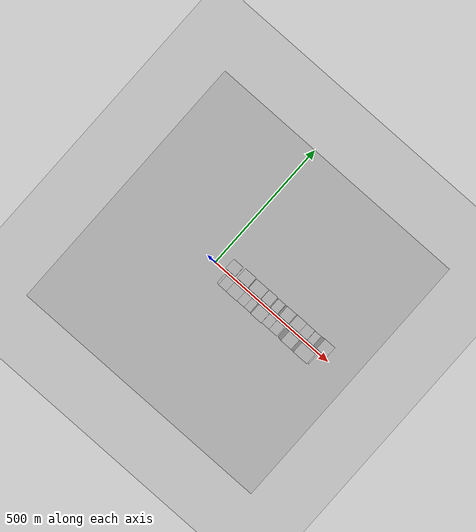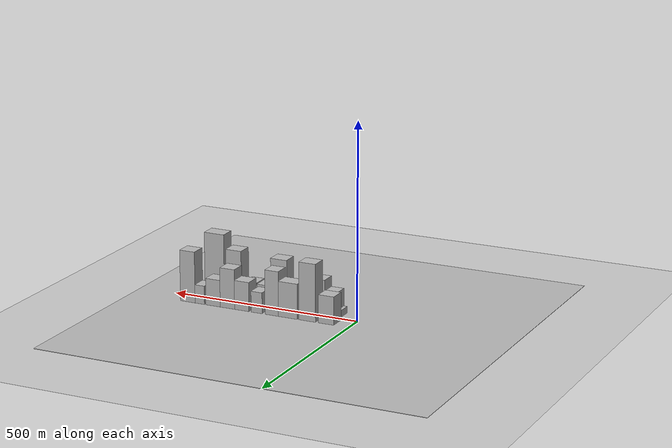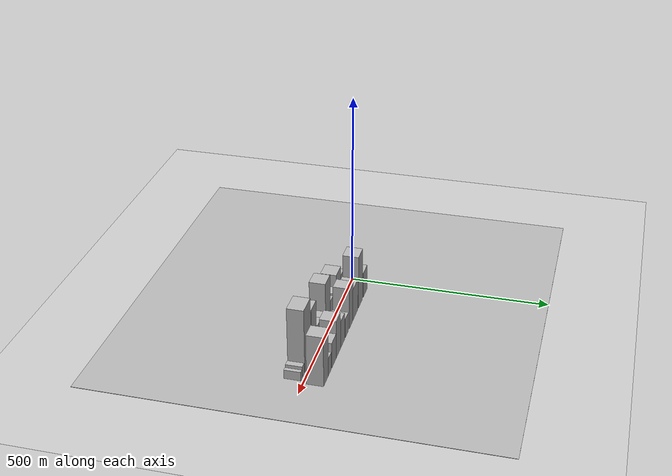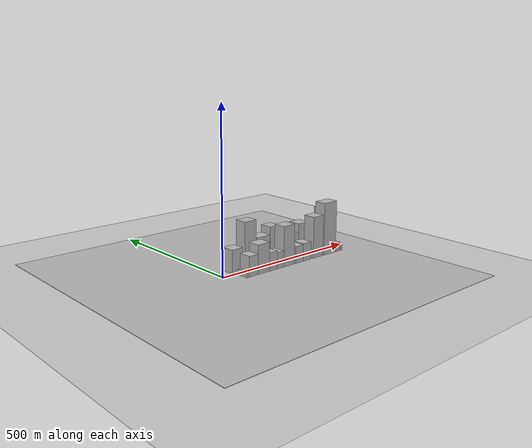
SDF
<?xml version="1.0" encoding="utf-8"?>

<sdf version="1.6">

   <world name="default">

      <gui fullscreen="0">

         <camera name="user_camera">

            <pose>-15 0 4.57585 0 0 0</pose>

            <view_controller>orbit</view_controller>

         </camera>

      </gui>

      <scene>

         <sky>

           <clouds>

             <speed>12</speed>

           </clouds>

         </sky>

         <ambient>0.4 0.4 0.4 1</ambient>

         <background>0.7 0.7 0.7 1</background>

         <shadows>1</shadows>

      </scene>

      <gravity>0 0 -9.8066</gravity>

      <magnetic_field>6e-06 2.3e-05 -4.2e-05</magnetic_field>

      <physics default="0" name="default_physics" type="ode">

         <ode>

            <solver>

               <type>quick</type>

               <iters>10</iters>

               <sor>1.0</sor>

               <use_dynamic_moi_rescaling>0</use_dynamic_moi_rescaling>

            </solver>

            <constraints>

               <cfm>0</cfm>

               <erp>0.2</erp>

               <contact_max_correcting_vel>100</contact_max_correcting_vel>

               <contact_surface_layer>0.001</contact_surface_layer>

            </constraints>

         </ode>

         <max_step_size>0.004</max_step_size>

         <real_time_factor>1</real_time_factor>

         <real_time_update_rate>250</real_time_update_rate>

      </physics>

      <light name="sun" type="directional">

         <cast_shadows>1</cast_shadows>

         <pose>0 0 10 0 0 0</pose>

         <diffuse>0.8 0.8 0.8 1</diffuse>

         <specular>0.2 0.2 0.2 1</specular>

         <attenuation>

            <range>1000</range>

            <constant>0.9</constant>

            <linear>0.01</linear>

            <quadratic>0.001</quadratic>

         </attenuation>

         <direction>-0.5 0.1 -0.9</direction>

      </light>

      <include>

         <name>ground_plane_1</name>

         <uri>model://HANNAS_ground_plane</uri>

         <pose>0 0 0  0 0 0</pose>

      </include>

      <include>

         <name>ground_plane_2</name>

         <uri>model://HANNAS_ground_plane</uri>

         <pose>100 0 0  0 0 0</pose>

      </include>

      <model name="building_1">

         <static>1</static>

         <pose frame="">60.5274 27.5000 0 0.000000 0.000000 1.570796</pose>

         <link name="link">

            <pose frame="">0 0 36.00 0 0 0</pose>

            <collision name="collision">

               <geometry>

                  <box>

                     <size>40.0000 41.0547 72.0000</size>

                  </box>

               </geometry>

               <max_contacts>10</max_contacts>

               <surface>

                  <contact>

                     <ode/>

                  </contact>

                  <bounce/>

                  <friction>

                     <torsional>

                        <ode/>

                     </torsional>

                     <ode/>

                  </friction>

               </surface>

            </collision>

            <visual name="visual">

               <cast_shadows>0</cast_shadows>

               <geometry>

                  <box>

                     <size>40.0000 41.0547 72.0000</size>

                  </box>

               </geometry>

               <material>

                  <script>

                     <uri>model://HANNAS_wall/materials/scripts</uri>

                     <uri>model://HANNAS_wall/materials/textures</uri>

                     <name>vrc/HANNAS_wall</name>

                  </script>

               </material>

            </visual>

            <self_collide>0</self_collide>

            <enable_wind>0</enable_wind>

            <kinematic>0</kinematic>

         </link>

      </model>

      <model name="building_2">

         <static>1</static>

         <pose frame="">111.3470 27.5000 0 0.000000 0.000000 1.570796</pose>

         <link name="link">

            <pose frame="">0 0 73.50 0 0 0</pose>

            <collision name="collision">

               <geometry>

                  <box>

                     <size>40.0000 44.5845 147.0000</size>

                  </box>

               </geometry>

               <max_contacts>10</max_contacts>

               <surface>

                  <contact>

                     <ode/>

                  </contact>

                  <bounce/>

                  <friction>

                     <torsional>

                        <ode/>

                     </torsional>

                     <ode/>

                  </friction>

               </surface>

            </collision>

            <visual name="visual">

               <cast_shadows>0</cast_shadows>

               <geometry>

                  <box>

                     <size>40.0000 44.5845 147.0000</size>

                  </box>

               </geometry>

               <material>

                  <script>

                     <uri>model://HANNAS_wall/materials/scripts</uri>

                     <uri>model://HANNAS_wall/materials/textures</uri>

                     <name>vrc/HANNAS_wall</name>

                  </script>

               </material>

            </visual>

            <self_collide>0</self_collide>

            <enable_wind>0</enable_wind>

            <kinematic>0</kinematic>

         </link>

      </model>

      <model name="building_3">

         <static>1</static>

         <pose frame="">163.5459 27.5000 0 0.000000 0.000000 1.570796</pose>

         <link name="link">

            <pose frame="">0 0 45.00 0 0 0</pose>

            <collision name="collision">

               <geometry>

                  <box>

                     <size>40.0000 51.8133 90.0000</size>

                  </box>

               </geometry>

               <max_contacts>10</max_contacts>

               <surface>

                  <contact>

                     <ode/>

                  </contact>

                  <bounce/>

                  <friction>

                     <torsional>

                        <ode/>

                     </torsional>

                     <ode/>

                  </friction>

               </surface>

            </collision>

            <visual name="visual">

               <cast_shadows>0</cast_shadows>

               <geometry>

                  <box>

                     <size>40.0000 51.8133 90.0000</size>

                  </box>

               </geometry>

               <material>

                  <script>

                     <uri>model://HANNAS_wall/materials/scripts</uri>

                     <uri>model://HANNAS_wall/materials/textures</uri>

                     <name>vrc/HANNAS_wall</name>

                  </script>

               </material>

            </visual>

            <self_collide>0</self_collide>

            <enable_wind>0</enable_wind>

            <kinematic>0</kinematic>

         </link>

      </model>

      <model name="building_4">

         <static>1</static>

         <pose frame="">207.6033 27.5000 0 0.000000 0.000000 1.570796</pose>

         <link name="link">

            <pose frame="">0 0 57.00 0 0 0</pose>

            <collision name="collision">

               <geometry>

                  <box>

                     <size>40.0000 36.3016 114.0000</size>

                  </box>

               </geometry>

               <max_contacts>10</max_contacts>

               <surface>

                  <contact>

                     <ode/>

                  </contact>

                  <bounce/>

                  <friction>

                     <torsional>

                        <ode/>

                     </torsional>

                     <ode/>

                  </friction>

               </surface>

            </collision>

            <visual name="visual">

               <cast_shadows>0</cast_shadows>

               <geometry>

                  <box>

                     <size>40.0000 36.3016 114.0000</size>

                  </box>

               </geometry>

               <material>

                  <script>

                     <uri>model://HANNAS_wall/materials/scripts</uri>

                     <uri>model://HANNAS_wall/materials/textures</uri>

                     <name>vrc/HANNAS_wall</name>

                  </script>

               </material>

            </visual>

            <self_collide>0</self_collide>

            <enable_wind>0</enable_wind>

            <kinematic>0</kinematic>

         </link>

      </model>

      <model name="building_5">

         <static>1</static>

         <pose frame="">248.8121 27.5000 0 0.000000 0.000000 1.570796</pose>

         <link name="link">

            <pose frame="">0 0 27.00 0 0 0</pose>

            <collision name="collision">

               <geometry>

                  <box>

                     <size>40.0000 30.1159 54.0000</size>

                  </box>

               </geometry>

               <max_contacts>10</max_contacts>

               <surface>

                  <contact>

                     <ode/>

                  </contact>

                  <bounce/>

                  <friction>

                     <torsional>

                        <ode/>

                     </torsional>

                     <ode/>

                  </friction>

               </surface>

            </collision>

            <visual name="visual">

               <cast_shadows>0</cast_shadows>

               <geometry>

                  <box>

                     <size>40.0000 30.1159 54.0000</size>

                  </box>

               </geometry>

               <material>

                  <script>

                     <uri>model://HANNAS_wall/materials/scripts</uri>

                     <uri>model://HANNAS_wall/materials/textures</uri>

                     <name>vrc/HANNAS_wall</name>

                  </script>

               </material>

            </visual>

            <self_collide>0</self_collide>

            <enable_wind>0</enable_wind>

            <kinematic>0</kinematic>

         </link>

      </model>

      <model name="building_6">

         <static>1</static>

         <pose frame="">289.7577 27.5000 0 0.000000 0.000000 1.570796</pose>

         <link name="link">

            <pose frame="">0 0 37.50 0 0 0</pose>

            <collision name="collision">

               <geometry>

                  <box>

                     <size>40.0000 39.7754 75.0000</size>

                  </box>

               </geometry>

               <max_contacts>10</max_contacts>

               <surface>

                  <contact>

                     <ode/>

                  </contact>

                  <bounce/>

                  <friction>

                     <torsional>

                        <ode/>

                     </torsional>

                     <ode/>

                  </friction>

               </surface>

            </collision>

            <visual name="visual">

               <cast_shadows>0</cast_shadows>

               <geometry>

                  <box>

                     <size>40.0000 39.7754 75.0000</size>

                  </box>

               </geometry>

               <material>

                  <script>

                     <uri>model://HANNAS_wall/materials/scripts</uri>

                     <uri>model://HANNAS_wall/materials/textures</uri>

                     <name>vrc/HANNAS_wall</name>

                  </script>

               </material>

            </visual>

            <self_collide>0</self_collide>

            <enable_wind>0</enable_wind>

            <kinematic>0</kinematic>

         </link>

      </model>

      <model name="building_7">

         <static>1</static>

         <pose frame="">329.6346 27.5000 0 0.000000 0.000000 1.570796</pose>

         <link name="link">

            <pose frame="">0 0 51.00 0 0 0</pose>

            <collision name="collision">

               <geometry>

                  <box>

                     <size>40.0000 39.9784 102.0000</size>

                  </box>

               </geometry>

               <max_contacts>10</max_contacts>

               <surface>

                  <contact>

                     <ode/>

                  </contact>

                  <bounce/>

                  <friction>

                     <torsional>

                        <ode/>

                     </torsional>

                     <ode/>

                  </friction>

               </surface>

            </collision>

            <visual name="visual">

               <cast_shadows>0</cast_shadows>

               <geometry>

                  <box>

                     <size>40.0000 39.9784 102.0000</size>

                  </box>

               </geometry>

               <material>

                  <script>

                     <uri>model://HANNAS_wall/materials/scripts</uri>

                     <uri>model://HANNAS_wall/materials/textures</uri>

                     <name>vrc/HANNAS_wall</name>

                  </script>

               </material>

            </visual>

            <self_collide>0</self_collide>

            <enable_wind>0</enable_wind>

            <kinematic>0</kinematic>

         </link>

      </model>

      <model name="building_8">

         <static>1</static>

         <pose frame="">369.5319 27.5000 0 0.000000 0.000000 1.570796</pose>

         <link name="link">

            <pose frame="">0 0 34.50 0 0 0</pose>

            <collision name="collision">

               <geometry>

                  <box>

                     <size>40.0000 39.8163 69.0000</size>

                  </box>

               </geometry>

               <max_contacts>10</max_contacts>

               <surface>

                  <contact>

                     <ode/>

                  </contact>

                  <bounce/>

                  <friction>

                     <torsional>

                        <ode/>

                     </torsional>

                     <ode/>

                  </friction>

               </surface>

            </collision>

            <visual name="visual">

               <cast_shadows>0</cast_shadows>

               <geometry>

                  <box>

                     <size>40.0000 39.8163 69.0000</size>

                  </box>

               </geometry>

               <material>

                  <script>

                     <uri>model://HANNAS_wall/materials/scripts</uri>

                     <uri>model://HANNAS_wall/materials/textures</uri>

                     <name>vrc/HANNAS_wall</name>

                  </script>

               </material>

            </visual>

            <self_collide>0</self_collide>

            <enable_wind>0</enable_wind>

            <kinematic>0</kinematic>

         </link>

      </model>

      <model name="building_9">

         <static>1</static>

         <pose frame="">406.6243 27.5000 0 0.000000 0.000000 1.570796</pose>

         <link name="link">

            <pose frame="">0 0 24.00 0 0 0</pose>

            <collision name="collision">

               <geometry>

                  <box>

                     <size>40.0000 26.3684 48.0000</size>

                  </box>

               </geometry>

               <max_contacts>10</max_contacts>

               <surface>

                  <contact>

                     <ode/>

                  </contact>

                  <bounce/>

                  <friction>

                     <torsional>

                        <ode/>

                     </torsional>

                     <ode/>

                  </friction>

               </surface>

            </collision>

            <visual name="visual">

               <cast_shadows>0</cast_shadows>

               <geometry>

                  <box>

                     <size>40.0000 26.3684 48.0000</size>

                  </box>

               </geometry>

               <material>

                  <script>

                     <uri>model://HANNAS_wall/materials/scripts</uri>

                     <uri>model://HANNAS_wall/materials/textures</uri>

                     <name>vrc/HANNAS_wall</name>

                  </script>

               </material>

            </visual>

            <self_collide>0</self_collide>

            <enable_wind>0</enable_wind>

            <kinematic>0</kinematic>

         </link>

      </model>

      <model name="building_10">

         <static>1</static>

         <pose frame="">440.4687 27.5000 0 0.000000 0.000000 1.570796</pose>

         <link name="link">

            <pose frame="">0 0 66.00 0 0 0</pose>

            <collision name="collision">

               <geometry>

                  <box>

                     <size>40.0000 41.3204 132.0000</size>

                  </box>

               </geometry>

               <max_contacts>10</max_contacts>

               <surface>

                  <contact>

                     <ode/>

                  </contact>

                  <bounce/>

                  <friction>

                     <torsional>

                        <ode/>

                     </torsional>

                     <ode/>

                  </friction>

               </surface>

            </collision>

            <visual name="visual">

               <cast_shadows>0</cast_shadows>

               <geometry>

                  <box>

                     <size>40.0000 41.3204 132.0000</size>

                  </box>

               </geometry>

               <material>

                  <script>

                     <uri>model://HANNAS_wall/materials/scripts</uri>

                     <uri>model://HANNAS_wall/materials/textures</uri>

                     <name>vrc/HANNAS_wall</name>

                  </script>

               </material>

            </visual>

            <self_collide>0</self_collide>

            <enable_wind>0</enable_wind>

            <kinematic>0</kinematic>

         </link>

      </model>

      <model name="building_11">

         <static>1</static>

         <pose frame="">53.3683 -27.5000 0 0.000000 0.000000 1.570796</pose>

         <link name="link">

            <pose frame="">0 0 9.00 0 0 0</pose>

            <collision name="collision">

               <geometry>

                  <box>

                     <size>40.0000 8.7366 18.0000</size>

                  </box>

               </geometry>

               <max_contacts>10</max_contacts>

               <surface>

                  <contact>

                     <ode/>

                  </contact>

                  <bounce/>

                  <friction>

                     <torsional>

                        <ode/>

                     </torsional>

                     <ode/>

                  </friction>

               </surface>

            </collision>

            <visual name="visual">

               <cast_shadows>0</cast_shadows>

               <geometry>

                  <box>

                     <size>40.0000 8.7366 18.0000</size>

                  </box>

               </geometry>

               <material>

                  <script>

                     <uri>model://HANNAS_wall/materials/scripts</uri>

                     <uri>model://HANNAS_wall/materials/textures</uri>

                     <name>vrc/HANNAS_wall</name>

                  </script>

               </material>

            </visual>

            <self_collide>0</self_collide>

            <enable_wind>0</enable_wind>

            <kinematic>0</kinematic>

         </link>

      </model>

      <model name="building_12">

         <static>1</static>

         <pose frame="">74.6329 -27.5000 0 0.000000 0.000000 1.570796</pose>

         <link name="link">

            <pose frame="">0 0 31.50 0 0 0</pose>

            <collision name="collision">

               <geometry>

                  <box>

                     <size>40.0000 33.7925 63.0000</size>

                  </box>

               </geometry>

               <max_contacts>10</max_contacts>

               <surface>

                  <contact>

                     <ode/>

                  </contact>

                  <bounce/>

                  <friction>

                     <torsional>

                        <ode/>

                     </torsional>

                     <ode/>

                  </friction>

               </surface>

            </collision>

            <visual name="visual">

               <cast_shadows>0</cast_shadows>

               <geometry>

                  <box>

                     <size>40.0000 33.7925 63.0000</size>

                  </box>

               </geometry>

               <material>

                  <script>

                     <uri>model://HANNAS_wall/materials/scripts</uri>

                     <uri>model://HANNAS_wall/materials/textures</uri>

                     <name>vrc/HANNAS_wall</name>

                  </script>

               </material>

            </visual>

            <self_collide>0</self_collide>

            <enable_wind>0</enable_wind>

            <kinematic>0</kinematic>

         </link>

      </model>

      <model name="building_13">

         <static>1</static>

         <pose frame="">114.0617 -27.5000 0 0.000000 0.000000 1.570796</pose>

         <link name="link">

            <pose frame="">0 0 45.00 0 0 0</pose>

            <collision name="collision">

               <geometry>

                  <box>

                     <size>40.0000 45.0651 90.0000</size>

                  </box>

               </geometry>

               <max_contacts>10</max_contacts>

               <surface>

                  <contact>

                     <ode/>

                  </contact>

                  <bounce/>

                  <friction>

                     <torsional>

                        <ode/>

                     </torsional>

                     <ode/>

                  </friction>

               </surface>

            </collision>

            <visual name="visual">

               <cast_shadows>0</cast_shadows>

               <geometry>

                  <box>

                     <size>40.0000 45.0651 90.0000</size>

                  </box>

               </geometry>

               <material>

                  <script>

                     <uri>model://HANNAS_wall/materials/scripts</uri>

                     <uri>model://HANNAS_wall/materials/textures</uri>

                     <name>vrc/HANNAS_wall</name>

                  </script>

               </material>

            </visual>

            <self_collide>0</self_collide>

            <enable_wind>0</enable_wind>

            <kinematic>0</kinematic>

         </link>

      </model>

      <model name="building_14">

         <static>1</static>

         <pose frame="">152.2538 -27.5000 0 0.000000 0.000000 1.570796</pose>

         <link name="link">

            <pose frame="">0 0 28.50 0 0 0</pose>

            <collision name="collision">

               <geometry>

                  <box>

                     <size>40.0000 31.3191 57.0000</size>

                  </box>

               </geometry>

               <max_contacts>10</max_contacts>

               <surface>

                  <contact>

                     <ode/>

                  </contact>

                  <bounce/>

                  <friction>

                     <torsional>

                        <ode/>

                     </torsional>

                     <ode/>

                  </friction>

               </surface>

            </collision>

            <visual name="visual">

               <cast_shadows>0</cast_shadows>

               <geometry>

                  <box>

                     <size>40.0000 31.3191 57.0000</size>

                  </box>

               </geometry>

               <material>

                  <script>

                     <uri>model://HANNAS_wall/materials/scripts</uri>

                     <uri>model://HANNAS_wall/materials/textures</uri>

                     <name>vrc/HANNAS_wall</name>

                  </script>

               </material>

            </visual>

            <self_collide>0</self_collide>

            <enable_wind>0</enable_wind>

            <kinematic>0</kinematic>

         </link>

      </model>

      <model name="building_15">

         <static>1</static>

         <pose frame="">181.1343 -27.5000 0 0.000000 0.000000 1.570796</pose>

         <link name="link">

            <pose frame="">0 0 25.50 0 0 0</pose>

            <collision name="collision">

               <geometry>

                  <box>

                     <size>40.0000 26.4420 51.0000</size>

                  </box>

               </geometry>

               <max_contacts>10</max_contacts>

               <surface>

                  <contact>

                     <ode/>

                  </contact>

                  <bounce/>

                  <friction>

                     <torsional>

                        <ode/>

                     </torsional>

                     <ode/>

                  </friction>

               </surface>

            </collision>

            <visual name="visual">

               <cast_shadows>0</cast_shadows>

               <geometry>

                  <box>

                     <size>40.0000 26.4420 51.0000</size>

                  </box>

               </geometry>

               <material>

                  <script>

                     <uri>model://HANNAS_wall/materials/scripts</uri>

                     <uri>model://HANNAS_wall/materials/textures</uri>

                     <name>vrc/HANNAS_wall</name>

                  </script>

               </material>

            </visual>

            <self_collide>0</self_collide>

            <enable_wind>0</enable_wind>

            <kinematic>0</kinematic>

         </link>

      </model>

      <model name="building_16">

         <static>1</static>

         <pose frame="">216.2459 -27.5000 0 0.000000 0.000000 1.570796</pose>

         <link name="link">

            <pose frame="">0 0 63.00 0 0 0</pose>

            <collision name="collision">

               <geometry>

                  <box>

                     <size>40.0000 43.7812 126.0000</size>

                  </box>

               </geometry>

               <max_contacts>10</max_contacts>

               <surface>

                  <contact>

                     <ode/>

                  </contact>

                  <bounce/>

                  <friction>

                     <torsional>

                        <ode/>

                     </torsional>

                     <ode/>

                  </friction>

               </surface>

            </collision>

            <visual name="visual">

               <cast_shadows>0</cast_shadows>

               <geometry>

                  <box>

                     <size>40.0000 43.7812 126.0000</size>

                  </box>

               </geometry>

               <material>

                  <script>

                     <uri>model://HANNAS_wall/materials/scripts</uri>

                     <uri>model://HANNAS_wall/materials/textures</uri>

                     <name>vrc/HANNAS_wall</name>

                  </script>

               </material>

            </visual>

            <self_collide>0</self_collide>

            <enable_wind>0</enable_wind>

            <kinematic>0</kinematic>

         </link>

      </model>

      <model name="building_17">

         <static>1</static>

         <pose frame="">260.0047 -27.5000 0 0.000000 0.000000 1.570796</pose>

         <link name="link">

            <pose frame="">0 0 27.00 0 0 0</pose>

            <collision name="collision">

               <geometry>

                  <box>

                     <size>40.0000 31.7364 54.0000</size>

                  </box>

               </geometry>

               <max_contacts>10</max_contacts>

               <surface>

                  <contact>

                     <ode/>

                  </contact>

                  <bounce/>

                  <friction>

                     <torsional>

                        <ode/>

                     </torsional>

                     <ode/>

                  </friction>

               </surface>

            </collision>

            <visual name="visual">

               <cast_shadows>0</cast_shadows>

               <geometry>

                  <box>

                     <size>40.0000 31.7364 54.0000</size>

                  </box>

               </geometry>

               <material>

                  <script>

                     <uri>model://HANNAS_wall/materials/scripts</uri>

                     <uri>model://HANNAS_wall/materials/textures</uri>

                     <name>vrc/HANNAS_wall</name>

                  </script>

               </material>

            </visual>

            <self_collide>0</self_collide>

            <enable_wind>0</enable_wind>

            <kinematic>0</kinematic>

         </link>

      </model>

      <model name="building_18">

         <static>1</static>

         <pose frame="">292.7698 -27.5000 0 0.000000 0.000000 1.570796</pose>

         <link name="link">

            <pose frame="">0 0 28.50 0 0 0</pose>

            <collision name="collision">

               <geometry>

                  <box>

                     <size>40.0000 33.7938 57.0000</size>

                  </box>

               </geometry>

               <max_contacts>10</max_contacts>

               <surface>

                  <contact>

                     <ode/>

                  </contact>

                  <bounce/>

                  <friction>

                     <torsional>

                        <ode/>

                     </torsional>

                     <ode/>

                  </friction>

               </surface>

            </collision>

            <visual name="visual">

               <cast_shadows>0</cast_shadows>

               <geometry>

                  <box>

                     <size>40.0000 33.7938 57.0000</size>

                  </box>

               </geometry>

               <material>

                  <script>

                     <uri>model://HANNAS_wall/materials/scripts</uri>

                     <uri>model://HANNAS_wall/materials/textures</uri>

                     <name>vrc/HANNAS_wall</name>

                  </script>

               </material>

            </visual>

            <self_collide>0</self_collide>

            <enable_wind>0</enable_wind>

            <kinematic>0</kinematic>

         </link>

      </model>

      <model name="building_19">

         <static>1</static>

         <pose frame="">340.9510 -27.5000 0 0.000000 0.000000 1.570796</pose>

         <link name="link">

            <pose frame="">0 0 66.00 0 0 0</pose>

            <collision name="collision">

               <geometry>

                  <box>

                     <size>40.0000 42.5685 132.0000</size>

                  </box>

               </geometry>

               <max_contacts>10</max_contacts>

               <surface>

                  <contact>

                     <ode/>

                  </contact>

                  <bounce/>

                  <friction>

                     <torsional>

                        <ode/>

                     </torsional>

                     <ode/>

                  </friction>

               </surface>

            </collision>

            <visual name="visual">

               <cast_shadows>0</cast_shadows>

               <geometry>

                  <box>

                     <size>40.0000 42.5685 132.0000</size>

                  </box>

               </geometry>

               <material>

                  <script>

                     <uri>model://HANNAS_wall/materials/scripts</uri>

                     <uri>model://HANNAS_wall/materials/textures</uri>

                     <name>vrc/HANNAS_wall</name>

                  </script>

               </material>

            </visual>

            <self_collide>0</self_collide>

            <enable_wind>0</enable_wind>

            <kinematic>0</kinematic>

         </link>

      </model>

      <model name="building_20">

         <static>1</static>

         <pose frame="">394.4320 -27.5000 0 0.000000 0.000000 1.570796</pose>

         <link name="link">

            <pose frame="">0 0 84.00 0 0 0</pose>

            <collision name="collision">

               <geometry>

                  <box>

                     <size>40.0000 54.3934 168.0000</size>

                  </box>

               </geometry>

               <max_contacts>10</max_contacts>

               <surface>

                  <contact>

                     <ode/>

                  </contact>

                  <bounce/>

                  <friction>

                     <torsional>

                        <ode/>

                     </torsional>

                     <ode/>

                  </friction>

               </surface>

            </collision>

            <visual name="visual">

               <cast_shadows>0</cast_shadows>

               <geometry>

                  <box>

                     <size>40.0000 54.3934 168.0000</size>

                  </box>

               </geometry>

               <material>

                  <script>

                     <uri>model://HANNAS_wall/materials/scripts</uri>

                     <uri>model://HANNAS_wall/materials/textures</uri>

                     <name>vrc/HANNAS_wall</name>

                  </script>

               </material>

            </visual>

            <self_collide>0</self_collide>

            <enable_wind>0</enable_wind>

            <kinematic>0</kinematic>

         </link>

      </model>

      <model name="building_21">

         <static>1</static>

         <pose frame="">432.4580 -27.5000 0 0.000000 0.000000 1.570796</pose>

         <link name="link">

            <pose frame="">0 0 15.00 0 0 0</pose>

            <collision name="collision">

               <geometry>

                  <box>

                     <size>40.0000 15.6587 30.0000</size>

                  </box>

               </geometry>

               <max_contacts>10</max_contacts>

               <surface>

                  <contact>

                     <ode/>

                  </contact>

                  <bounce/>

                  <friction>

                     <torsional>

                        <ode/>

                     </torsional>

                     <ode/>

                  </friction>

               </surface>

            </collision>

            <visual name="visual">

               <cast_shadows>0</cast_shadows>

               <geometry>

                  <box>

                     <size>40.0000 15.6587 30.0000</size>

                  </box>

               </geometry>

               <material>

                  <script>

                     <uri>model://HANNAS_wall/materials/scripts</uri>

                     <uri>model://HANNAS_wall/materials/textures</uri>

                     <name>vrc/HANNAS_wall</name>

                  </script>

               </material>

            </visual>

            <self_collide>0</self_collide>

            <enable_wind>0</enable_wind>

            <kinematic>0</kinematic>

         </link>

      </model>

      <model name="building_22">

         <static>1</static>

         <pose frame="">448.1713 -27.5000 0 0.000000 0.000000 1.570796</pose>

         <link name="link">

            <pose frame="">0 0 12.00 0 0 0</pose>

            <collision name="collision">

               <geometry>

                  <box>

                     <size>40.0000 9.7679 24.0000</size>

                  </box>

               </geometry>

               <max_contacts>10</max_contacts>

               <surface>

                  <contact>

                     <ode/>

                  </contact>

                  <bounce/>

                  <friction>

                     <torsional>

                        <ode/>

                     </torsional>

                     <ode/>

                  </friction>

               </surface>

            </collision>

            <visual name="visual">

               <cast_shadows>0</cast_shadows>

               <geometry>

                  <box>

                     <size>40.0000 9.7679 24.0000</size>

                  </box>

               </geometry>

               <material>

                  <script>

                     <uri>model://HANNAS_wall/materials/scripts</uri>

                     <uri>model://HANNAS_wall/materials/textures</uri>

                     <name>vrc/HANNAS_wall</name>

                  </script>

               </material>

            </visual>

            <self_collide>0</self_collide>

            <enable_wind>0</enable_wind>

            <kinematic>0</kinematic>

         </link>

      </model>

   </world>

</sdf>

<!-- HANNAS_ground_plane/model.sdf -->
<sdf version="1.4">
<model name="HANNAS_ground_plane">
  <static>true</static>
    <link name="link">
      <collision name="collision">
        <geometry>
          <plane>
            <normal>0 0 1</normal>
            <size>1000 1000</size>
          </plane>
        </geometry>
        <surface>
          <friction>
            <ode>
              <mu>100</mu>
              <mu2>50</mu2>
            </ode>
          </friction>
        </surface>
      </collision>
      <visual name="visual">
        <cast_shadows>false</cast_shadows>
        <geometry>
          <plane>
            <normal>0 0 1</normal>
            <size>1000 1000</size>
          </plane>
        </geometry>
        <material>
          <script>
            <uri>model://HANNAS_ground_plane/materials/scripts/HANNAS_ground_plane.material</uri>
	    <uri>model://HANNAS_ground_plane/materials/textures</uri>
            <name>HANNASGroundPlane/Image</name>
          </script>
        </material>
      </visual>
    </link>
  </model>
</sdf>
